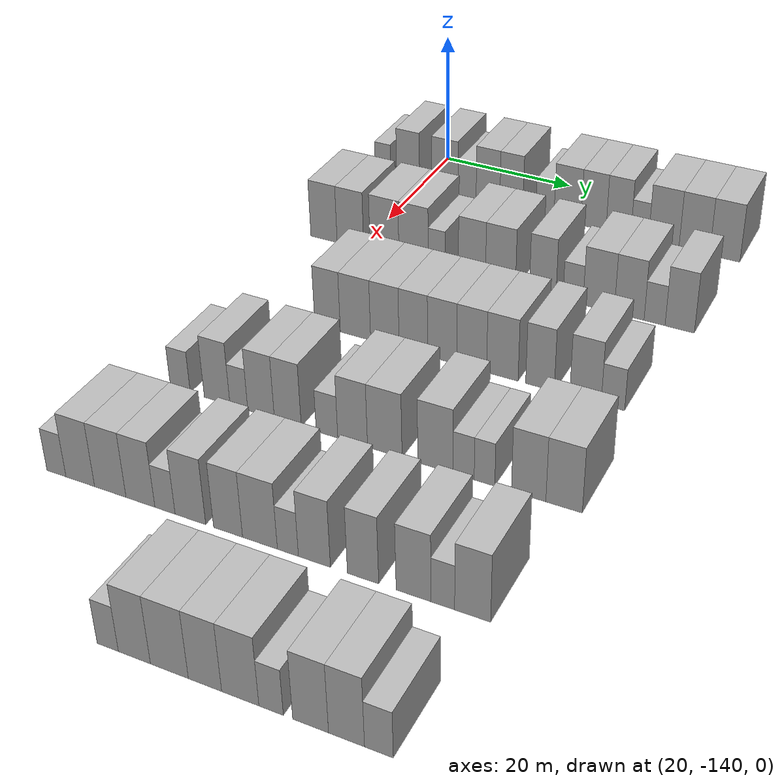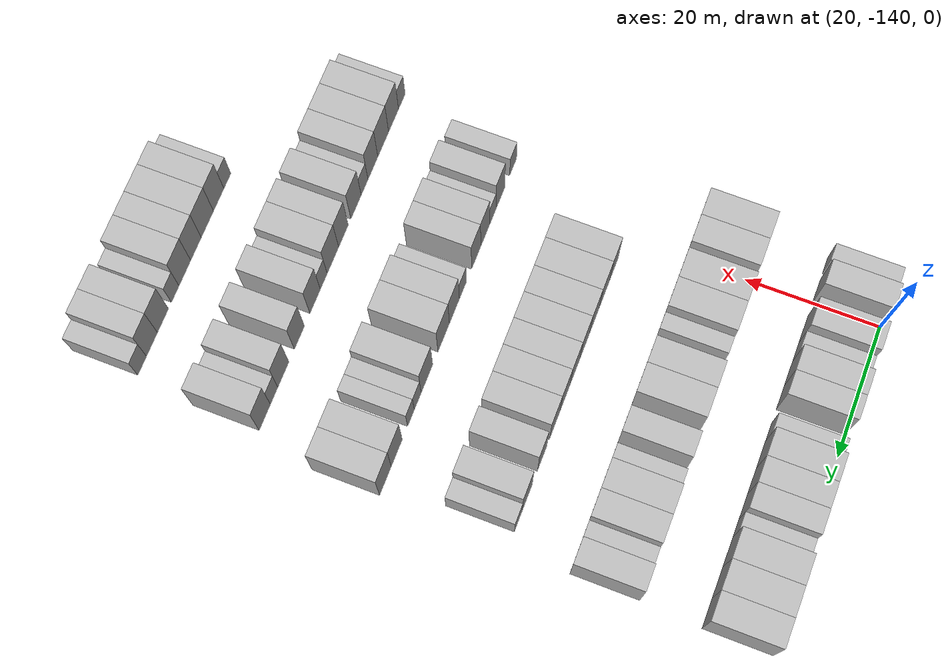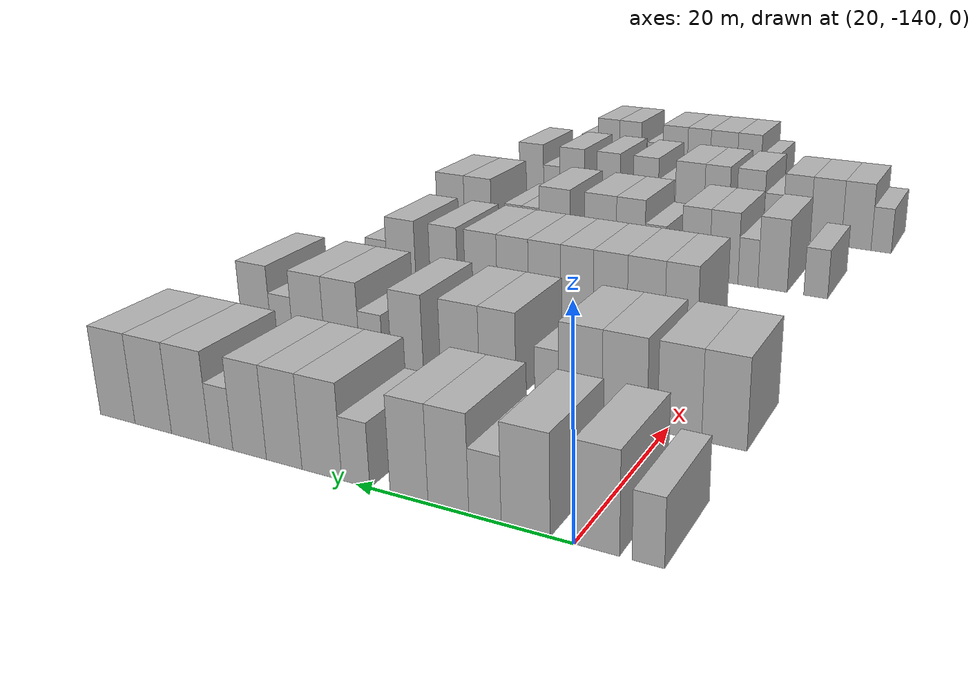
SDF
<sdf version="1.6">
 <world name="default">
  <model name="building_46">
   <static>1</static>
   <pose>25.0000 -146.0811 0 0.000000 0.000000 0.000000</pose>
   <link name="link">
    <pose>0 0 3.00 0 0 0</pose>
    <collision name="collision"><geometry><box><size>10.0000 2.5927 6.0000</size></box></geometry></collision>
    <visual name="visual">
     <cast_shadows>0</cast_shadows>
     <geometry><box><size>10.0000 2.5927 6.0000</size></box></geometry>
     <material>
      <script>
       <uri>model://HANNAS_wall/materials/scripts</uri>
       <uri>model://HANNAS_wall/materials/textures</uri>
       <name>vrc/HANNAS_wall</name>
      </script>
     </material>
    </visual>
   </link>
  </model>
  <model name="building_47">
   <static>1</static>
   <pose>25.0000 -141.8875 0 0.000000 0.000000 0.000000</pose>
   <link name="link">
    <pose>0 0 4.50 0 0 0</pose>
    <collision name="collision"><geometry><box><size>10.0000 3.7946 9.0000</size></box></geometry></collision>
    <visual name="visual">
     <cast_shadows>0</cast_shadows>
     <geometry><box><size>10.0000 3.7946 9.0000</size></box></geometry>
     <material>
      <script>
       <uri>model://HANNAS_wall/materials/scripts</uri>
       <uri>model://HANNAS_wall/materials/textures</uri>
       <name>vrc/HANNAS_wall</name>
      </script>
     </material>
    </visual>
   </link>
  </model>
  <model name="building_48">
   <static>1</static>
   <pose>25.0000 -135.8577 0 0.000000 0.000000 0.000000</pose>
   <link name="link">
    <pose>0 0 4.50 0 0 0</pose>
    <collision name="collision"><geometry><box><size>10.0000 4.2649 9.0000</size></box></geometry></collision>
    <visual name="visual">
     <cast_shadows>0</cast_shadows>
     <geometry><box><size>10.0000 4.2649 9.0000</size></box></geometry>
     <material>
      <script>
       <uri>model://HANNAS_wall/materials/scripts</uri>
       <uri>model://HANNAS_wall/materials/textures</uri>
       <name>vrc/HANNAS_wall</name>
      </script>
     </material>
    </visual>
   </link>
  </model>
  <model name="building_49">
   <static>1</static>
   <pose>25.0000 -132.2645 0 0.000000 0.000000 0.000000</pose>
   <link name="link">
    <pose>0 0 3.00 0 0 0</pose>
    <collision name="collision"><geometry><box><size>10.0000 2.9213 6.0000</size></box></geometry></collision>
    <visual name="visual">
     <cast_shadows>0</cast_shadows>
     <geometry><box><size>10.0000 2.9213 6.0000</size></box></geometry>
     <material>
      <script>
       <uri>model://HANNAS_wall/materials/scripts</uri>
       <uri>model://HANNAS_wall/materials/textures</uri>
       <name>vrc/HANNAS_wall</name>
      </script>
     </material>
    </visual>
   </link>
  </model>
  <model name="building_50">
   <static>1</static>
   <pose>25.0000 -128.9096 0 0.000000 0.000000 0.000000</pose>
   <link name="link">
    <pose>0 0 4.50 0 0 0</pose>
    <collision name="collision"><geometry><box><size>10.0000 3.7886 9.0000</size></box></geometry></collision>
    <visual name="visual">
     <cast_shadows>0</cast_shadows>
     <geometry><box><size>10.0000 3.7886 9.0000</size></box></geometry>
     <material>
      <script>
       <uri>model://HANNAS_wall/materials/scripts</uri>
       <uri>model://HANNAS_wall/materials/textures</uri>
       <name>vrc/HANNAS_wall</name>
      </script>
     </material>
    </visual>
   </link>
  </model>
  <model name="building_51">
   <static>1</static>
   <pose>25.0000 -125.1942 0 0.000000 0.000000 0.000000</pose>
   <link name="link">
    <pose>0 0 4.50 0 0 0</pose>
    <collision name="collision"><geometry><box><size>10.0000 3.6423 9.0000</size></box></geometry></collision>
    <visual name="visual">
     <cast_shadows>0</cast_shadows>
     <geometry><box><size>10.0000 3.6423 9.0000</size></box></geometry>
     <material>
      <script>
       <uri>model://HANNAS_wall/materials/scripts</uri>
       <uri>model://HANNAS_wall/materials/textures</uri>
       <name>vrc/HANNAS_wall</name>
      </script>
     </material>
    </visual>
   </link>
  </model>
  <model name="building_52">
   <static>1</static>
   <pose>25.0000 -119.9669 0 0.000000 0.000000 0.000000</pose>
   <link name="link">
    <pose>0 0 3.00 0 0 0</pose>
    <collision name="collision"><geometry><box><size>10.0000 2.8123 6.0000</size></box></geometry></collision>
    <visual name="visual">
     <cast_shadows>0</cast_shadows>
     <geometry><box><size>10.0000 2.8123 6.0000</size></box></geometry>
     <material>
      <script>
       <uri>model://HANNAS_wall/materials/scripts</uri>
       <uri>model://HANNAS_wall/materials/textures</uri>
       <name>vrc/HANNAS_wall</name>
      </script>
     </material>
    </visual>
   </link>
  </model>
  <model name="building_53">
   <static>1</static>
   <pose>25.0000 -116.4990 0 0.000000 0.000000 0.000000</pose>
   <link name="link">
    <pose>0 0 4.50 0 0 0</pose>
    <collision name="collision"><geometry><box><size>10.0000 4.1236 9.0000</size></box></geometry></collision>
    <visual name="visual">
     <cast_shadows>0</cast_shadows>
     <geometry><box><size>10.0000 4.1236 9.0000</size></box></geometry>
     <material>
      <script>
       <uri>model://HANNAS_wall/materials/scripts</uri>
       <uri>model://HANNAS_wall/materials/textures</uri>
       <name>vrc/HANNAS_wall</name>
      </script>
     </material>
    </visual>
   </link>
  </model>
  <model name="building_54">
   <static>1</static>
   <pose>25.0000 -112.5327 0 0.000000 0.000000 0.000000</pose>
   <link name="link">
    <pose>0 0 4.50 0 0 0</pose>
    <collision name="collision"><geometry><box><size>10.0000 3.8090 9.0000</size></box></geometry></collision>
    <visual name="visual">
     <cast_shadows>0</cast_shadows>
     <geometry><box><size>10.0000 3.8090 9.0000</size></box></geometry>
     <material>
      <script>
       <uri>model://HANNAS_wall/materials/scripts</uri>
       <uri>model://HANNAS_wall/materials/textures</uri>
       <name>vrc/HANNAS_wall</name>
      </script>
     </material>
    </visual>
   </link>
  </model>
  <model name="building_55">
   <static>1</static>
   <pose>25.0000 -108.7788 0 0.000000 0.000000 0.000000</pose>
   <link name="link">
    <pose>0 0 4.50 0 0 0</pose>
    <collision name="collision"><geometry><box><size>10.0000 3.6990 9.0000</size></box></geometry></collision>
    <visual name="visual">
     <cast_shadows>0</cast_shadows>
     <geometry><box><size>10.0000 3.6990 9.0000</size></box></geometry>
     <material>
      <script>
       <uri>model://HANNAS_wall/materials/scripts</uri>
       <uri>model://HANNAS_wall/materials/textures</uri>
       <name>vrc/HANNAS_wall</name>
      </script>
     </material>
    </visual>
   </link>
  </model>
  <model name="building_56">
   <static>1</static>
   <pose>25.0000 -105.6228 0 0.000000 0.000000 0.000000</pose>
   <link name="link">
    <pose>0 0 3.00 0 0 0</pose>
    <collision name="collision"><geometry><box><size>10.0000 2.6129 6.0000</size></box></geometry></collision>
    <visual name="visual">
     <cast_shadows>0</cast_shadows>
     <geometry><box><size>10.0000 2.6129 6.0000</size></box></geometry>
     <material>
      <script>
       <uri>model://HANNAS_wall/materials/scripts</uri>
       <uri>model://HANNAS_wall/materials/textures</uri>
       <name>vrc/HANNAS_wall</name>
      </script>
     </material>
    </visual>
   </link>
  </model>
  <model name="building_57">
   <static>1</static>
   <pose>25.0000 -102.0917 0 0.000000 0.000000 0.000000</pose>
   <link name="link">
    <pose>0 0 4.50 0 0 0</pose>
    <collision name="collision"><geometry><box><size>10.0000 4.4494 9.0000</size></box></geometry></collision>
    <visual name="visual">
     <cast_shadows>0</cast_shadows>
     <geometry><box><size>10.0000 4.4494 9.0000</size></box></geometry>
     <material>
      <script>
       <uri>model://HANNAS_wall/materials/scripts</uri>
       <uri>model://HANNAS_wall/materials/textures</uri>
       <name>vrc/HANNAS_wall</name>
      </script>
     </material>
    </visual>
   </link>
  </model>
  <model name="building_58">
   <static>1</static>
   <pose>25.0000 -97.6659 0 0.000000 0.000000 0.000000</pose>
   <link name="link">
    <pose>0 0 4.50 0 0 0</pose>
    <collision name="collision"><geometry><box><size>10.0000 4.4021 9.0000</size></box></geometry></collision>
    <visual name="visual">
     <cast_shadows>0</cast_shadows>
     <geometry><box><size>10.0000 4.4021 9.0000</size></box></geometry>
     <material>
      <script>
       <uri>model://HANNAS_wall/materials/scripts</uri>
       <uri>model://HANNAS_wall/materials/textures</uri>
       <name>vrc/HANNAS_wall</name>
      </script>
     </material>
    </visual>
   </link>
  </model>
  <model name="building_59">
   <static>1</static>
   <pose>25.0000 -93.3166 0 0.000000 0.000000 0.000000</pose>
   <link name="link">
    <pose>0 0 4.50 0 0 0</pose>
    <collision name="collision"><geometry><box><size>10.0000 4.2964 9.0000</size></box></geometry></collision>
    <visual name="visual">
     <cast_shadows>0</cast_shadows>
     <geometry><box><size>10.0000 4.2964 9.0000</size></box></geometry>
     <material>
      <script>
       <uri>model://HANNAS_wall/materials/scripts</uri>
       <uri>model://HANNAS_wall/materials/textures</uri>
       <name>vrc/HANNAS_wall</name>
      </script>
     </material>
    </visual>
   </link>
  </model>
  <model name="building_219">
   <static>1</static>
   <pose>44.0000 -145.6508 0 0.000000 0.000000 0.000000</pose>
   <link name="link">
    <pose>0 0 4.50 0 0 0</pose>
    <collision name="collision"><geometry><box><size>10.0000 4.1992 9.0000</size></box></geometry></collision>
    <visual name="visual">
     <cast_shadows>0</cast_shadows>
     <geometry><box><size>10.0000 4.1992 9.0000</size></box></geometry>
     <material>
      <script>
       <uri>model://HANNAS_wall/materials/scripts</uri>
       <uri>model://HANNAS_wall/materials/textures</uri>
       <name>vrc/HANNAS_wall</name>
      </script>
     </material>
    </visual>
   </link>
  </model>
  <model name="building_220">
   <static>1</static>
   <pose>44.0000 -141.4461 0 0.000000 0.000000 0.000000</pose>
   <link name="link">
    <pose>0 0 4.50 0 0 0</pose>
    <collision name="collision"><geometry><box><size>10.0000 4.2101 9.0000</size></box></geometry></collision>
    <visual name="visual">
     <cast_shadows>0</cast_shadows>
     <geometry><box><size>10.0000 4.2101 9.0000</size></box></geometry>
     <material>
      <script>
       <uri>model://HANNAS_wall/materials/scripts</uri>
       <uri>model://HANNAS_wall/materials/textures</uri>
       <name>vrc/HANNAS_wall</name>
      </script>
     </material>
    </visual>
   </link>
  </model>
  <model name="building_221">
   <static>1</static>
   <pose>44.0000 -136.1087 0 0.000000 0.000000 0.000000</pose>
   <link name="link">
    <pose>0 0 4.50 0 0 0</pose>
    <collision name="collision"><geometry><box><size>10.0000 4.4647 9.0000</size></box></geometry></collision>
    <visual name="visual">
     <cast_shadows>0</cast_shadows>
     <geometry><box><size>10.0000 4.4647 9.0000</size></box></geometry>
     <material>
      <script>
       <uri>model://HANNAS_wall/materials/scripts</uri>
       <uri>model://HANNAS_wall/materials/textures</uri>
       <name>vrc/HANNAS_wall</name>
      </script>
     </material>
    </visual>
   </link>
  </model>
  <model name="building_222">
   <static>1</static>
   <pose>44.0000 -131.6382 0 0.000000 0.000000 0.000000</pose>
   <link name="link">
    <pose>0 0 4.50 0 0 0</pose>
    <collision name="collision"><geometry><box><size>10.0000 4.4764 9.0000</size></box></geometry></collision>
    <visual name="visual">
     <cast_shadows>0</cast_shadows>
     <geometry><box><size>10.0000 4.4764 9.0000</size></box></geometry>
     <material>
      <script>
       <uri>model://HANNAS_wall/materials/scripts</uri>
       <uri>model://HANNAS_wall/materials/textures</uri>
       <name>vrc/HANNAS_wall</name>
      </script>
     </material>
    </visual>
   </link>
  </model>
  <model name="building_223">
   <static>1</static>
   <pose>44.0000 -128.1388 0 0.000000 0.000000 0.000000</pose>
   <link name="link">
    <pose>0 0 3.00 0 0 0</pose>
    <collision name="collision"><geometry><box><size>10.0000 2.5224 6.0000</size></box></geometry></collision>
    <visual name="visual">
     <cast_shadows>0</cast_shadows>
     <geometry><box><size>10.0000 2.5224 6.0000</size></box></geometry>
     <material>
      <script>
       <uri>model://HANNAS_wall/materials/scripts</uri>
       <uri>model://HANNAS_wall/materials/textures</uri>
       <name>vrc/HANNAS_wall</name>
      </script>
     </material>
    </visual>
   </link>
  </model>
  <model name="building_224">
   <static>1</static>
   <pose>44.0000 -122.8713 0 0.000000 0.000000 0.000000</pose>
   <link name="link">
    <pose>0 0 4.50 0 0 0</pose>
    <collision name="collision"><geometry><box><size>10.0000 4.0126 9.0000</size></box></geometry></collision>
    <visual name="visual">
     <cast_shadows>0</cast_shadows>
     <geometry><box><size>10.0000 4.0126 9.0000</size></box></geometry>
     <material>
      <script>
       <uri>model://HANNAS_wall/materials/scripts</uri>
       <uri>model://HANNAS_wall/materials/textures</uri>
       <name>vrc/HANNAS_wall</name>
      </script>
     </material>
    </visual>
   </link>
  </model>
  <model name="building_225">
   <static>1</static>
   <pose>44.0000 -118.6766 0 0.000000 0.000000 0.000000</pose>
   <link name="link">
    <pose>0 0 4.50 0 0 0</pose>
    <collision name="collision"><geometry><box><size>10.0000 4.3768 9.0000</size></box></geometry></collision>
    <visual name="visual">
     <cast_shadows>0</cast_shadows>
     <geometry><box><size>10.0000 4.3768 9.0000</size></box></geometry>
     <material>
      <script>
       <uri>model://HANNAS_wall/materials/scripts</uri>
       <uri>model://HANNAS_wall/materials/textures</uri>
       <name>vrc/HANNAS_wall</name>
      </script>
     </material>
    </visual>
   </link>
  </model>
  <model name="building_226">
   <static>1</static>
   <pose>44.0000 -112.5944 0 0.000000 0.000000 0.000000</pose>
   <link name="link">
    <pose>0 0 4.50 0 0 0</pose>
    <collision name="collision"><geometry><box><size>10.0000 3.7878 9.0000</size></box></geometry></collision>
    <visual name="visual">
     <cast_shadows>0</cast_shadows>
     <geometry><box><size>10.0000 3.7878 9.0000</size></box></geometry>
     <material>
      <script>
       <uri>model://HANNAS_wall/materials/scripts</uri>
       <uri>model://HANNAS_wall/materials/textures</uri>
       <name>vrc/HANNAS_wall</name>
      </script>
     </material>
    </visual>
   </link>
  </model>
  <model name="building_227">
   <static>1</static>
   <pose>44.0000 -108.2891 0 0.000000 0.000000 0.000000</pose>
   <link name="link">
    <pose>0 0 3.00 0 0 0</pose>
    <collision name="collision"><geometry><box><size>10.0000 2.8228 6.0000</size></box></geometry></collision>
    <visual name="visual">
     <cast_shadows>0</cast_shadows>
     <geometry><box><size>10.0000 2.8228 6.0000</size></box></geometry>
     <material>
      <script>
       <uri>model://HANNAS_wall/materials/scripts</uri>
       <uri>model://HANNAS_wall/materials/textures</uri>
       <name>vrc/HANNAS_wall</name>
      </script>
     </material>
    </visual>
   </link>
  </model>
  <model name="building_228">
   <static>1</static>
   <pose>44.0000 -104.7102 0 0.000000 0.000000 0.000000</pose>
   <link name="link">
    <pose>0 0 4.50 0 0 0</pose>
    <collision name="collision"><geometry><box><size>10.0000 4.3349 9.0000</size></box></geometry></collision>
    <visual name="visual">
     <cast_shadows>0</cast_shadows>
     <geometry><box><size>10.0000 4.3349 9.0000</size></box></geometry>
     <material>
      <script>
       <uri>model://HANNAS_wall/materials/scripts</uri>
       <uri>model://HANNAS_wall/materials/textures</uri>
       <name>vrc/HANNAS_wall</name>
      </script>
     </material>
    </visual>
   </link>
  </model>
  <model name="building_229">
   <static>1</static>
   <pose>44.0000 -100.5040 0 0.000000 0.000000 0.000000</pose>
   <link name="link">
    <pose>0 0 4.50 0 0 0</pose>
    <collision name="collision"><geometry><box><size>10.0000 4.0776 9.0000</size></box></geometry></collision>
    <visual name="visual">
     <cast_shadows>0</cast_shadows>
     <geometry><box><size>10.0000 4.0776 9.0000</size></box></geometry>
     <material>
      <script>
       <uri>model://HANNAS_wall/materials/scripts</uri>
       <uri>model://HANNAS_wall/materials/textures</uri>
       <name>vrc/HANNAS_wall</name>
      </script>
     </material>
    </visual>
   </link>
  </model>
  <model name="building_230">
   <static>1</static>
   <pose>44.0000 -97.0490 0 0.000000 0.000000 0.000000</pose>
   <link name="link">
    <pose>0 0 3.00 0 0 0</pose>
    <collision name="collision"><geometry><box><size>10.0000 2.8323 6.0000</size></box></geometry></collision>
    <visual name="visual">
     <cast_shadows>0</cast_shadows>
     <geometry><box><size>10.0000 2.8323 6.0000</size></box></geometry>
     <material>
      <script>
       <uri>model://HANNAS_wall/materials/scripts</uri>
       <uri>model://HANNAS_wall/materials/textures</uri>
       <name>vrc/HANNAS_wall</name>
      </script>
     </material>
    </visual>
   </link>
  </model>
  <model name="building_231">
   <static>1</static>
   <pose>44.0000 -93.6786 0 0.000000 0.000000 0.000000</pose>
   <link name="link">
    <pose>0 0 4.50 0 0 0</pose>
    <collision name="collision"><geometry><box><size>10.0000 3.9084 9.0000</size></box></geometry></collision>
    <visual name="visual">
     <cast_shadows>0</cast_shadows>
     <geometry><box><size>10.0000 3.9084 9.0000</size></box></geometry>
     <material>
      <script>
       <uri>model://HANNAS_wall/materials/scripts</uri>
       <uri>model://HANNAS_wall/materials/textures</uri>
       <name>vrc/HANNAS_wall</name>
      </script>
     </material>
    </visual>
   </link>
  </model>
  <model name="building_379">
   <static>1</static>
   <pose>63.0000 -134.5514 0 0.000000 0.000000 0.000000</pose>
   <link name="link">
    <pose>0 0 4.50 0 0 0</pose>
    <collision name="collision"><geometry><box><size>10.0000 3.7237 9.0000</size></box></geometry></collision>
    <visual name="visual">
     <cast_shadows>0</cast_shadows>
     <geometry><box><size>10.0000 3.7237 9.0000</size></box></geometry>
     <material>
      <script>
       <uri>model://HANNAS_wall/materials/scripts</uri>
       <uri>model://HANNAS_wall/materials/textures</uri>
       <name>vrc/HANNAS_wall</name>
      </script>
     </material>
    </visual>
   </link>
  </model>
  <model name="building_380">
   <static>1</static>
   <pose>63.0000 -130.5120 0 0.000000 0.000000 0.000000</pose>
   <link name="link">
    <pose>0 0 4.50 0 0 0</pose>
    <collision name="collision"><geometry><box><size>10.0000 4.3551 9.0000</size></box></geometry></collision>
    <visual name="visual">
     <cast_shadows>0</cast_shadows>
     <geometry><box><size>10.0000 4.3551 9.0000</size></box></geometry>
     <material>
      <script>
       <uri>model://HANNAS_wall/materials/scripts</uri>
       <uri>model://HANNAS_wall/materials/textures</uri>
       <name>vrc/HANNAS_wall</name>
      </script>
     </material>
    </visual>
   </link>
  </model>
  <model name="building_381">
   <static>1</static>
   <pose>63.0000 -126.3172 0 0.000000 0.000000 0.000000</pose>
   <link name="link">
    <pose>0 0 4.50 0 0 0</pose>
    <collision name="collision"><geometry><box><size>10.0000 4.0345 9.0000</size></box></geometry></collision>
    <visual name="visual">
     <cast_shadows>0</cast_shadows>
     <geometry><box><size>10.0000 4.0345 9.0000</size></box></geometry>
     <material>
      <script>
       <uri>model://HANNAS_wall/materials/scripts</uri>
       <uri>model://HANNAS_wall/materials/textures</uri>
       <name>vrc/HANNAS_wall</name>
      </script>
     </material>
    </visual>
   </link>
  </model>
  <model name="building_382">
   <static>1</static>
   <pose>63.0000 -122.3087 0 0.000000 0.000000 0.000000</pose>
   <link name="link">
    <pose>0 0 4.50 0 0 0</pose>
    <collision name="collision"><geometry><box><size>10.0000 3.9825 9.0000</size></box></geometry></collision>
    <visual name="visual">
     <cast_shadows>0</cast_shadows>
     <geometry><box><size>10.0000 3.9825 9.0000</size></box></geometry>
     <material>
      <script>
       <uri>model://HANNAS_wall/materials/scripts</uri>
       <uri>model://HANNAS_wall/materials/textures</uri>
       <name>vrc/HANNAS_wall</name>
      </script>
     </material>
    </visual>
   </link>
  </model>
  <model name="building_383">
   <static>1</static>
   <pose>63.0000 -118.3073 0 0.000000 0.000000 0.000000</pose>
   <link name="link">
    <pose>0 0 4.50 0 0 0</pose>
    <collision name="collision"><geometry><box><size>10.0000 4.0203 9.0000</size></box></geometry></collision>
    <visual name="visual">
     <cast_shadows>0</cast_shadows>
     <geometry><box><size>10.0000 4.0203 9.0000</size></box></geometry>
     <material>
      <script>
       <uri>model://HANNAS_wall/materials/scripts</uri>
       <uri>model://HANNAS_wall/materials/textures</uri>
       <name>vrc/HANNAS_wall</name>
      </script>
     </material>
    </visual>
   </link>
  </model>
  <model name="building_384">
   <static>1</static>
   <pose>63.0000 -114.2898 0 0.000000 0.000000 0.000000</pose>
   <link name="link">
    <pose>0 0 4.50 0 0 0</pose>
    <collision name="collision"><geometry><box><size>10.0000 4.0145 9.0000</size></box></geometry></collision>
    <visual name="visual">
     <cast_shadows>0</cast_shadows>
     <geometry><box><size>10.0000 4.0145 9.0000</size></box></geometry>
     <material>
      <script>
       <uri>model://HANNAS_wall/materials/scripts</uri>
       <uri>model://HANNAS_wall/materials/textures</uri>
       <name>vrc/HANNAS_wall</name>
      </script>
     </material>
    </visual>
   </link>
  </model>
  <model name="building_385">
   <static>1</static>
   <pose>63.0000 -110.1867 0 0.000000 0.000000 0.000000</pose>
   <link name="link">
    <pose>0 0 4.50 0 0 0</pose>
    <collision name="collision"><geometry><box><size>10.0000 4.1919 9.0000</size></box></geometry></collision>
    <visual name="visual">
     <cast_shadows>0</cast_shadows>
     <geometry><box><size>10.0000 4.1919 9.0000</size></box></geometry>
     <material>
      <script>
       <uri>model://HANNAS_wall/materials/scripts</uri>
       <uri>model://HANNAS_wall/materials/textures</uri>
       <name>vrc/HANNAS_wall</name>
      </script>
     </material>
    </visual>
   </link>
  </model>
  <model name="building_386">
   <static>1</static>
   <pose>63.0000 -105.2268 0 0.000000 0.000000 0.000000</pose>
   <link name="link">
    <pose>0 0 4.50 0 0 0</pose>
    <collision name="collision"><geometry><box><size>10.0000 3.7279 9.0000</size></box></geometry></collision>
    <visual name="visual">
     <cast_shadows>0</cast_shadows>
     <geometry><box><size>10.0000 3.7279 9.0000</size></box></geometry>
     <material>
      <script>
       <uri>model://HANNAS_wall/materials/scripts</uri>
       <uri>model://HANNAS_wall/materials/textures</uri>
       <name>vrc/HANNAS_wall</name>
      </script>
     </material>
    </visual>
   </link>
  </model>
  <model name="building_387">
   <static>1</static>
   <pose>63.0000 -99.3565 0 0.000000 0.000000 0.000000</pose>
   <link name="link">
    <pose>0 0 4.50 0 0 0</pose>
    <collision name="collision"><geometry><box><size>10.0000 4.0126 9.0000</size></box></geometry></collision>
    <visual name="visual">
     <cast_shadows>0</cast_shadows>
     <geometry><box><size>10.0000 4.0126 9.0000</size></box></geometry>
     <material>
      <script>
       <uri>model://HANNAS_wall/materials/scripts</uri>
       <uri>model://HANNAS_wall/materials/textures</uri>
       <name>vrc/HANNAS_wall</name>
      </script>
     </material>
    </visual>
   </link>
  </model>
  <model name="building_388">
   <static>1</static>
   <pose>63.0000 -95.8680 0 0.000000 0.000000 0.000000</pose>
   <link name="link">
    <pose>0 0 3.00 0 0 0</pose>
    <collision name="collision"><geometry><box><size>10.0000 2.9643 6.0000</size></box></geometry></collision>
    <visual name="visual">
     <cast_shadows>0</cast_shadows>
     <geometry><box><size>10.0000 2.9643 6.0000</size></box></geometry>
     <material>
      <script>
       <uri>model://HANNAS_wall/materials/scripts</uri>
       <uri>model://HANNAS_wall/materials/textures</uri>
       <name>vrc/HANNAS_wall</name>
      </script>
     </material>
    </visual>
   </link>
  </model>
  <model name="building_559">
   <static>1</static>
   <pose>82.0000 -144.3277 0 0.000000 0.000000 0.000000</pose>
   <link name="link">
    <pose>0 0 3.00 0 0 0</pose>
    <collision name="collision"><geometry><box><size>10.0000 2.8382 6.0000</size></box></geometry></collision>
    <visual name="visual">
     <cast_shadows>0</cast_shadows>
     <geometry><box><size>10.0000 2.8382 6.0000</size></box></geometry>
     <material>
      <script>
       <uri>model://HANNAS_wall/materials/scripts</uri>
       <uri>model://HANNAS_wall/materials/textures</uri>
       <name>vrc/HANNAS_wall</name>
      </script>
     </material>
    </visual>
   </link>
  </model>
  <model name="building_560">
   <static>1</static>
   <pose>82.0000 -139.1069 0 0.000000 0.000000 0.000000</pose>
   <link name="link">
    <pose>0 0 4.50 0 0 0</pose>
    <collision name="collision"><geometry><box><size>10.0000 3.6034 9.0000</size></box></geometry></collision>
    <visual name="visual">
     <cast_shadows>0</cast_shadows>
     <geometry><box><size>10.0000 3.6034 9.0000</size></box></geometry>
     <material>
      <script>
       <uri>model://HANNAS_wall/materials/scripts</uri>
       <uri>model://HANNAS_wall/materials/textures</uri>
       <name>vrc/HANNAS_wall</name>
      </script>
     </material>
    </visual>
   </link>
  </model>
  <model name="building_561">
   <static>1</static>
   <pose>82.0000 -136.0661 0 0.000000 0.000000 0.000000</pose>
   <link name="link">
    <pose>0 0 3.00 0 0 0</pose>
    <collision name="collision"><geometry><box><size>10.0000 2.4783 6.0000</size></box></geometry></collision>
    <visual name="visual">
     <cast_shadows>0</cast_shadows>
     <geometry><box><size>10.0000 2.4783 6.0000</size></box></geometry>
     <material>
      <script>
       <uri>model://HANNAS_wall/materials/scripts</uri>
       <uri>model://HANNAS_wall/materials/textures</uri>
       <name>vrc/HANNAS_wall</name>
      </script>
     </material>
    </visual>
   </link>
  </model>
  <model name="building_562">
   <static>1</static>
   <pose>82.0000 -133.0035 0 0.000000 0.000000 0.000000</pose>
   <link name="link">
    <pose>0 0 4.50 0 0 0</pose>
    <collision name="collision"><geometry><box><size>10.0000 3.6469 9.0000</size></box></geometry></collision>
    <visual name="visual">
     <cast_shadows>0</cast_shadows>
     <geometry><box><size>10.0000 3.6469 9.0000</size></box></geometry>
     <material>
      <script>
       <uri>model://HANNAS_wall/materials/scripts</uri>
       <uri>model://HANNAS_wall/materials/textures</uri>
       <name>vrc/HANNAS_wall</name>
      </script>
     </material>
    </visual>
   </link>
  </model>
  <model name="building_563">
   <static>1</static>
   <pose>82.0000 -129.3601 0 0.000000 0.000000 0.000000</pose>
   <link name="link">
    <pose>0 0 4.50 0 0 0</pose>
    <collision name="collision"><geometry><box><size>10.0000 3.6398 9.0000</size></box></geometry></collision>
    <visual name="visual">
     <cast_shadows>0</cast_shadows>
     <geometry><box><size>10.0000 3.6398 9.0000</size></box></geometry>
     <material>
      <script>
       <uri>model://HANNAS_wall/materials/scripts</uri>
       <uri>model://HANNAS_wall/materials/textures</uri>
       <name>vrc/HANNAS_wall</name>
      </script>
     </material>
    </visual>
   </link>
  </model>
  <model name="building_564">
   <static>1</static>
   <pose>82.0000 -124.1135 0 0.000000 0.000000 0.000000</pose>
   <link name="link">
    <pose>0 0 3.00 0 0 0</pose>
    <collision name="collision"><geometry><box><size>10.0000 2.8534 6.0000</size></box></geometry></collision>
    <visual name="visual">
     <cast_shadows>0</cast_shadows>
     <geometry><box><size>10.0000 2.8534 6.0000</size></box></geometry>
     <material>
      <script>
       <uri>model://HANNAS_wall/materials/scripts</uri>
       <uri>model://HANNAS_wall/materials/textures</uri>
       <name>vrc/HANNAS_wall</name>
      </script>
     </material>
    </visual>
   </link>
  </model>
  <model name="building_565">
   <static>1</static>
   <pose>82.0000 -120.7448 0 0.000000 0.000000 0.000000</pose>
   <link name="link">
    <pose>0 0 4.50 0 0 0</pose>
    <collision name="collision"><geometry><box><size>10.0000 3.8840 9.0000</size></box></geometry></collision>
    <visual name="visual">
     <cast_shadows>0</cast_shadows>
     <geometry><box><size>10.0000 3.8840 9.0000</size></box></geometry>
     <material>
      <script>
       <uri>model://HANNAS_wall/materials/scripts</uri>
       <uri>model://HANNAS_wall/materials/textures</uri>
       <name>vrc/HANNAS_wall</name>
      </script>
     </material>
    </visual>
   </link>
  </model>
  <model name="building_566">
   <static>1</static>
   <pose>82.0000 -116.5870 0 0.000000 0.000000 0.000000</pose>
   <link name="link">
    <pose>0 0 4.50 0 0 0</pose>
    <collision name="collision"><geometry><box><size>10.0000 4.4315 9.0000</size></box></geometry></collision>
    <visual name="visual">
     <cast_shadows>0</cast_shadows>
     <geometry><box><size>10.0000 4.4315 9.0000</size></box></geometry>
     <material>
      <script>
       <uri>model://HANNAS_wall/materials/scripts</uri>
       <uri>model://HANNAS_wall/materials/textures</uri>
       <name>vrc/HANNAS_wall</name>
      </script>
     </material>
    </visual>
   </link>
  </model>
  <model name="building_567">
   <static>1</static>
   <pose>82.0000 -110.1740 0 0.000000 0.000000 0.000000</pose>
   <link name="link">
    <pose>0 0 4.50 0 0 0</pose>
    <collision name="collision"><geometry><box><size>10.0000 4.3946 9.0000</size></box></geometry></collision>
    <visual name="visual">
     <cast_shadows>0</cast_shadows>
     <geometry><box><size>10.0000 4.3946 9.0000</size></box></geometry>
     <material>
      <script>
       <uri>model://HANNAS_wall/materials/scripts</uri>
       <uri>model://HANNAS_wall/materials/textures</uri>
       <name>vrc/HANNAS_wall</name>
      </script>
     </material>
    </visual>
   </link>
  </model>
  <model name="building_568">
   <static>1</static>
   <pose>82.0000 -106.6808 0 0.000000 0.000000 0.000000</pose>
   <link name="link">
    <pose>0 0 3.00 0 0 0</pose>
    <collision name="collision"><geometry><box><size>10.0000 2.5918 6.0000</size></box></geometry></collision>
    <visual name="visual">
     <cast_shadows>0</cast_shadows>
     <geometry><box><size>10.0000 2.5918 6.0000</size></box></geometry>
     <material>
      <script>
       <uri>model://HANNAS_wall/materials/scripts</uri>
       <uri>model://HANNAS_wall/materials/textures</uri>
       <name>vrc/HANNAS_wall</name>
      </script>
     </material>
    </visual>
   </link>
  </model>
  <model name="building_569">
   <static>1</static>
   <pose>82.0000 -104.1280 0 0.000000 0.000000 0.000000</pose>
   <link name="link">
    <pose>0 0 3.00 0 0 0</pose>
    <collision name="collision"><geometry><box><size>10.0000 2.5138 6.0000</size></box></geometry></collision>
    <visual name="visual">
     <cast_shadows>0</cast_shadows>
     <geometry><box><size>10.0000 2.5138 6.0000</size></box></geometry>
     <material>
      <script>
       <uri>model://HANNAS_wall/materials/scripts</uri>
       <uri>model://HANNAS_wall/materials/textures</uri>
       <name>vrc/HANNAS_wall</name>
      </script>
     </material>
    </visual>
   </link>
  </model>
  <model name="building_570">
   <static>1</static>
   <pose>82.0000 -98.8239 0 0.000000 0.000000 0.000000</pose>
   <link name="link">
    <pose>0 0 4.50 0 0 0</pose>
    <collision name="collision"><geometry><box><size>10.0000 4.0945 9.0000</size></box></geometry></collision>
    <visual name="visual">
     <cast_shadows>0</cast_shadows>
     <geometry><box><size>10.0000 4.0945 9.0000</size></box></geometry>
     <material>
      <script>
       <uri>model://HANNAS_wall/materials/scripts</uri>
       <uri>model://HANNAS_wall/materials/textures</uri>
       <name>vrc/HANNAS_wall</name>
      </script>
     </material>
    </visual>
   </link>
  </model>
  <model name="building_571">
   <static>1</static>
   <pose>82.0000 -94.6431 0 0.000000 0.000000 0.000000</pose>
   <link name="link">
    <pose>0 0 4.50 0 0 0</pose>
    <collision name="collision"><geometry><box><size>10.0000 4.2672 9.0000</size></box></geometry></collision>
    <visual name="visual">
     <cast_shadows>0</cast_shadows>
     <geometry><box><size>10.0000 4.2672 9.0000</size></box></geometry>
     <material>
      <script>
       <uri>model://HANNAS_wall/materials/scripts</uri>
       <uri>model://HANNAS_wall/materials/textures</uri>
       <name>vrc/HANNAS_wall</name>
      </script>
     </material>
    </visual>
   </link>
  </model>
  <model name="building_724">
   <static>1</static>
   <pose>101.0000 -148.2036 0 0.000000 0.000000 0.000000</pose>
   <link name="link">
    <pose>0 0 3.00 0 0 0</pose>
    <collision name="collision"><geometry><box><size>10.0000 2.6203 6.0000</size></box></geometry></collision>
    <visual name="visual">
     <cast_shadows>0</cast_shadows>
     <geometry><box><size>10.0000 2.6203 6.0000</size></box></geometry>
     <material>
      <script>
       <uri>model://HANNAS_wall/materials/scripts</uri>
       <uri>model://HANNAS_wall/materials/textures</uri>
       <name>vrc/HANNAS_wall</name>
      </script>
     </material>
    </visual>
   </link>
  </model>
  <model name="building_725">
   <static>1</static>
   <pose>101.0000 -144.9442 0 0.000000 0.000000 0.000000</pose>
   <link name="link">
    <pose>0 0 4.50 0 0 0</pose>
    <collision name="collision"><geometry><box><size>10.0000 3.8985 9.0000</size></box></geometry></collision>
    <visual name="visual">
     <cast_shadows>0</cast_shadows>
     <geometry><box><size>10.0000 3.8985 9.0000</size></box></geometry>
     <material>
      <script>
       <uri>model://HANNAS_wall/materials/scripts</uri>
       <uri>model://HANNAS_wall/materials/textures</uri>
       <name>vrc/HANNAS_wall</name>
      </script>
     </material>
    </visual>
   </link>
  </model>
  <model name="building_726">
   <static>1</static>
   <pose>101.0000 -140.8925 0 0.000000 0.000000 0.000000</pose>
   <link name="link">
    <pose>0 0 4.50 0 0 0</pose>
    <collision name="collision"><geometry><box><size>10.0000 4.2049 9.0000</size></box></geometry></collision>
    <visual name="visual">
     <cast_shadows>0</cast_shadows>
     <geometry><box><size>10.0000 4.2049 9.0000</size></box></geometry>
     <material>
      <script>
       <uri>model://HANNAS_wall/materials/scripts</uri>
       <uri>model://HANNAS_wall/materials/textures</uri>
       <name>vrc/HANNAS_wall</name>
      </script>
     </material>
    </visual>
   </link>
  </model>
  <model name="building_727">
   <static>1</static>
   <pose>101.0000 -136.8880 0 0.000000 0.000000 0.000000</pose>
   <link name="link">
    <pose>0 0 4.50 0 0 0</pose>
    <collision name="collision"><geometry><box><size>10.0000 3.8040 9.0000</size></box></geometry></collision>
    <visual name="visual">
     <cast_shadows>0</cast_shadows>
     <geometry><box><size>10.0000 3.8040 9.0000</size></box></geometry>
     <material>
      <script>
       <uri>model://HANNAS_wall/materials/scripts</uri>
       <uri>model://HANNAS_wall/materials/textures</uri>
       <name>vrc/HANNAS_wall</name>
      </script>
     </material>
    </visual>
   </link>
  </model>
  <model name="building_728">
   <static>1</static>
   <pose>101.0000 -133.6749 0 0.000000 0.000000 0.000000</pose>
   <link name="link">
    <pose>0 0 3.00 0 0 0</pose>
    <collision name="collision"><geometry><box><size>10.0000 2.6223 6.0000</size></box></geometry></collision>
    <visual name="visual">
     <cast_shadows>0</cast_shadows>
     <geometry><box><size>10.0000 2.6223 6.0000</size></box></geometry>
     <material>
      <script>
       <uri>model://HANNAS_wall/materials/scripts</uri>
       <uri>model://HANNAS_wall/materials/textures</uri>
       <name>vrc/HANNAS_wall</name>
      </script>
     </material>
    </visual>
   </link>
  </model>
  <model name="building_729">
   <static>1</static>
   <pose>101.0000 -130.4053 0 0.000000 0.000000 0.000000</pose>
   <link name="link">
    <pose>0 0 4.50 0 0 0</pose>
    <collision name="collision"><geometry><box><size>10.0000 3.9170 9.0000</size></box></geometry></collision>
    <visual name="visual">
     <cast_shadows>0</cast_shadows>
     <geometry><box><size>10.0000 3.9170 9.0000</size></box></geometry>
     <material>
      <script>
       <uri>model://HANNAS_wall/materials/scripts</uri>
       <uri>model://HANNAS_wall/materials/textures</uri>
       <name>vrc/HANNAS_wall</name>
      </script>
     </material>
    </visual>
   </link>
  </model>
  <model name="building_730">
   <static>1</static>
   <pose>101.0000 -125.6363 0 0.000000 0.000000 0.000000</pose>
   <link name="link">
    <pose>0 0 4.50 0 0 0</pose>
    <collision name="collision"><geometry><box><size>10.0000 3.6211 9.0000</size></box></geometry></collision>
    <visual name="visual">
     <cast_shadows>0</cast_shadows>
     <geometry><box><size>10.0000 3.6211 9.0000</size></box></geometry>
     <material>
      <script>
       <uri>model://HANNAS_wall/materials/scripts</uri>
       <uri>model://HANNAS_wall/materials/textures</uri>
       <name>vrc/HANNAS_wall</name>
      </script>
     </material>
    </visual>
   </link>
  </model>
  <model name="building_731">
   <static>1</static>
   <pose>101.0000 -121.6835 0 0.000000 0.000000 0.000000</pose>
   <link name="link">
    <pose>0 0 4.50 0 0 0</pose>
    <collision name="collision"><geometry><box><size>10.0000 4.2844 9.0000</size></box></geometry></collision>
    <visual name="visual">
     <cast_shadows>0</cast_shadows>
     <geometry><box><size>10.0000 4.2844 9.0000</size></box></geometry>
     <material>
      <script>
       <uri>model://HANNAS_wall/materials/scripts</uri>
       <uri>model://HANNAS_wall/materials/textures</uri>
       <name>vrc/HANNAS_wall</name>
      </script>
     </material>
    </visual>
   </link>
  </model>
  <model name="building_732">
   <static>1</static>
   <pose>101.0000 -118.2681 0 0.000000 0.000000 0.000000</pose>
   <link name="link">
    <pose>0 0 3.00 0 0 0</pose>
    <collision name="collision"><geometry><box><size>10.0000 2.5466 6.0000</size></box></geometry></collision>
    <visual name="visual">
     <cast_shadows>0</cast_shadows>
     <geometry><box><size>10.0000 2.5466 6.0000</size></box></geometry>
     <material>
      <script>
       <uri>model://HANNAS_wall/materials/scripts</uri>
       <uri>model://HANNAS_wall/materials/textures</uri>
       <name>vrc/HANNAS_wall</name>
      </script>
     </material>
    </visual>
   </link>
  </model>
  <model name="building_733">
   <static>1</static>
   <pose>101.0000 -115.0849 0 0.000000 0.000000 0.000000</pose>
   <link name="link">
    <pose>0 0 4.50 0 0 0</pose>
    <collision name="collision"><geometry><box><size>10.0000 3.8199 9.0000</size></box></geometry></collision>
    <visual name="visual">
     <cast_shadows>0</cast_shadows>
     <geometry><box><size>10.0000 3.8199 9.0000</size></box></geometry>
     <material>
      <script>
       <uri>model://HANNAS_wall/materials/scripts</uri>
       <uri>model://HANNAS_wall/materials/textures</uri>
       <name>vrc/HANNAS_wall</name>
      </script>
     </material>
    </visual>
   </link>
  </model>
  <model name="building_734">
   <static>1</static>
   <pose>101.0000 -109.3563 0 0.000000 0.000000 0.000000</pose>
   <link name="link">
    <pose>0 0 4.50 0 0 0</pose>
    <collision name="collision"><geometry><box><size>10.0000 3.6372 9.0000</size></box></geometry></collision>
    <visual name="visual">
     <cast_shadows>0</cast_shadows>
     <geometry><box><size>10.0000 3.6372 9.0000</size></box></geometry>
     <material>
      <script>
       <uri>model://HANNAS_wall/materials/scripts</uri>
       <uri>model://HANNAS_wall/materials/textures</uri>
       <name>vrc/HANNAS_wall</name>
      </script>
     </material>
    </visual>
   </link>
  </model>
  <model name="building_735">
   <static>1</static>
   <pose>101.0000 -103.5693 0 0.000000 0.000000 0.000000</pose>
   <link name="link">
    <pose>0 0 4.50 0 0 0</pose>
    <collision name="collision"><geometry><box><size>10.0000 3.9368 9.0000</size></box></geometry></collision>
    <visual name="visual">
     <cast_shadows>0</cast_shadows>
     <geometry><box><size>10.0000 3.9368 9.0000</size></box></geometry>
     <material>
      <script>
       <uri>model://HANNAS_wall/materials/scripts</uri>
       <uri>model://HANNAS_wall/materials/textures</uri>
       <name>vrc/HANNAS_wall</name>
      </script>
     </material>
    </visual>
   </link>
  </model>
  <model name="building_736">
   <static>1</static>
   <pose>101.0000 -100.2812 0 0.000000 0.000000 0.000000</pose>
   <link name="link">
    <pose>0 0 3.00 0 0 0</pose>
    <collision name="collision"><geometry><box><size>10.0000 2.6394 6.0000</size></box></geometry></collision>
    <visual name="visual">
     <cast_shadows>0</cast_shadows>
     <geometry><box><size>10.0000 2.6394 6.0000</size></box></geometry>
     <material>
      <script>
       <uri>model://HANNAS_wall/materials/scripts</uri>
       <uri>model://HANNAS_wall/materials/textures</uri>
       <name>vrc/HANNAS_wall</name>
      </script>
     </material>
    </visual>
   </link>
  </model>
  <model name="building_737">
   <static>1</static>
   <pose>101.0000 -96.9810 0 0.000000 0.000000 0.000000</pose>
   <link name="link">
    <pose>0 0 4.50 0 0 0</pose>
    <collision name="collision"><geometry><box><size>10.0000 3.9612 9.0000</size></box></geometry></collision>
    <visual name="visual">
     <cast_shadows>0</cast_shadows>
     <geometry><box><size>10.0000 3.9612 9.0000</size></box></geometry>
     <material>
      <script>
       <uri>model://HANNAS_wall/materials/scripts</uri>
       <uri>model://HANNAS_wall/materials/textures</uri>
       <name>vrc/HANNAS_wall</name>
      </script>
     </material>
    </visual>
   </link>
  </model>
  <model name="building_894">
   <static>1</static>
   <pose>120.0000 -127.4683 0 0.000000 0.000000 0.000000</pose>
   <link name="link">
    <pose>0 0 3.00 0 0 0</pose>
    <collision name="collision"><geometry><box><size>10.0000 2.5068 6.0000</size></box></geometry></collision>
    <visual name="visual">
     <cast_shadows>0</cast_shadows>
     <geometry><box><size>10.0000 2.5068 6.0000</size></box></geometry>
     <material>
      <script>
       <uri>model://HANNAS_wall/materials/scripts</uri>
       <uri>model://HANNAS_wall/materials/textures</uri>
       <name>vrc/HANNAS_wall</name>
      </script>
     </material>
    </visual>
   </link>
  </model>
  <model name="building_895">
   <static>1</static>
   <pose>120.0000 -124.3464 0 0.000000 0.000000 0.000000</pose>
   <link name="link">
    <pose>0 0 4.50 0 0 0</pose>
    <collision name="collision"><geometry><box><size>10.0000 3.7372 9.0000</size></box></geometry></collision>
    <visual name="visual">
     <cast_shadows>0</cast_shadows>
     <geometry><box><size>10.0000 3.7372 9.0000</size></box></geometry>
     <material>
      <script>
       <uri>model://HANNAS_wall/materials/scripts</uri>
       <uri>model://HANNAS_wall/materials/textures</uri>
       <name>vrc/HANNAS_wall</name>
      </script>
     </material>
    </visual>
   </link>
  </model>
  <model name="building_896">
   <static>1</static>
   <pose>120.0000 -120.3086 0 0.000000 0.000000 0.000000</pose>
   <link name="link">
    <pose>0 0 4.50 0 0 0</pose>
    <collision name="collision"><geometry><box><size>10.0000 4.3384 9.0000</size></box></geometry></collision>
    <visual name="visual">
     <cast_shadows>0</cast_shadows>
     <geometry><box><size>10.0000 4.3384 9.0000</size></box></geometry>
     <material>
      <script>
       <uri>model://HANNAS_wall/materials/scripts</uri>
       <uri>model://HANNAS_wall/materials/textures</uri>
       <name>vrc/HANNAS_wall</name>
      </script>
     </material>
    </visual>
   </link>
  </model>
  <model name="building_897">
   <static>1</static>
   <pose>120.0000 -116.2757 0 0.000000 0.000000 0.000000</pose>
   <link name="link">
    <pose>0 0 4.50 0 0 0</pose>
    <collision name="collision"><geometry><box><size>10.0000 3.7273 9.0000</size></box></geometry></collision>
    <visual name="visual">
     <cast_shadows>0</cast_shadows>
     <geometry><box><size>10.0000 3.7273 9.0000</size></box></geometry>
     <material>
      <script>
       <uri>model://HANNAS_wall/materials/scripts</uri>
       <uri>model://HANNAS_wall/materials/textures</uri>
       <name>vrc/HANNAS_wall</name>
      </script>
     </material>
    </visual>
   </link>
  </model>
  <model name="building_898">
   <static>1</static>
   <pose>120.0000 -112.3643 0 0.000000 0.000000 0.000000</pose>
   <link name="link">
    <pose>0 0 4.50 0 0 0</pose>
    <collision name="collision"><geometry><box><size>10.0000 4.0955 9.0000</size></box></geometry></collision>
    <visual name="visual">
     <cast_shadows>0</cast_shadows>
     <geometry><box><size>10.0000 4.0955 9.0000</size></box></geometry>
     <material>
      <script>
       <uri>model://HANNAS_wall/materials/scripts</uri>
       <uri>model://HANNAS_wall/materials/textures</uri>
       <name>vrc/HANNAS_wall</name>
      </script>
     </material>
    </visual>
   </link>
  </model>
  <model name="building_899">
   <static>1</static>
   <pose>120.0000 -108.9962 0 0.000000 0.000000 0.000000</pose>
   <link name="link">
    <pose>0 0 3.00 0 0 0</pose>
    <collision name="collision"><geometry><box><size>10.0000 2.6408 6.0000</size></box></geometry></collision>
    <visual name="visual">
     <cast_shadows>0</cast_shadows>
     <geometry><box><size>10.0000 2.6408 6.0000</size></box></geometry>
     <material>
      <script>
       <uri>model://HANNAS_wall/materials/scripts</uri>
       <uri>model://HANNAS_wall/materials/textures</uri>
       <name>vrc/HANNAS_wall</name>
      </script>
     </material>
    </visual>
   </link>
  </model>
  <model name="building_900">
   <static>1</static>
   <pose>120.0000 -104.7821 0 0.000000 0.000000 0.000000</pose>
   <link name="link">
    <pose>0 0 4.50 0 0 0</pose>
    <collision name="collision"><geometry><box><size>10.0000 3.7875 9.0000</size></box></geometry></collision>
    <visual name="visual">
     <cast_shadows>0</cast_shadows>
     <geometry><box><size>10.0000 3.7875 9.0000</size></box></geometry>
     <material>
      <script>
       <uri>model://HANNAS_wall/materials/scripts</uri>
       <uri>model://HANNAS_wall/materials/textures</uri>
       <name>vrc/HANNAS_wall</name>
      </script>
     </material>
    </visual>
   </link>
  </model>
  <model name="building_901">
   <static>1</static>
   <pose>120.0000 -101.0244 0 0.000000 0.000000 0.000000</pose>
   <link name="link">
    <pose>0 0 4.50 0 0 0</pose>
    <collision name="collision"><geometry><box><size>10.0000 3.7277 9.0000</size></box></geometry></collision>
    <visual name="visual">
     <cast_shadows>0</cast_shadows>
     <geometry><box><size>10.0000 3.7277 9.0000</size></box></geometry>
     <material>
      <script>
       <uri>model://HANNAS_wall/materials/scripts</uri>
       <uri>model://HANNAS_wall/materials/textures</uri>
       <name>vrc/HANNAS_wall</name>
      </script>
     </material>
    </visual>
   </link>
  </model>
  <model name="building_902">
   <static>1</static>
   <pose>120.0000 -97.6953 0 0.000000 0.000000 0.000000</pose>
   <link name="link">
    <pose>0 0 3.00 0 0 0</pose>
    <collision name="collision"><geometry><box><size>10.0000 2.9306 6.0000</size></box></geometry></collision>
    <visual name="visual">
     <cast_shadows>0</cast_shadows>
     <geometry><box><size>10.0000 2.9306 6.0000</size></box></geometry>
     <material>
      <script>
       <uri>model://HANNAS_wall/materials/scripts</uri>
       <uri>model://HANNAS_wall/materials/textures</uri>
       <name>vrc/HANNAS_wall</name>
      </script>
     </material>
    </visual>
   </link>
  </model>
 </world>
</sdf>
